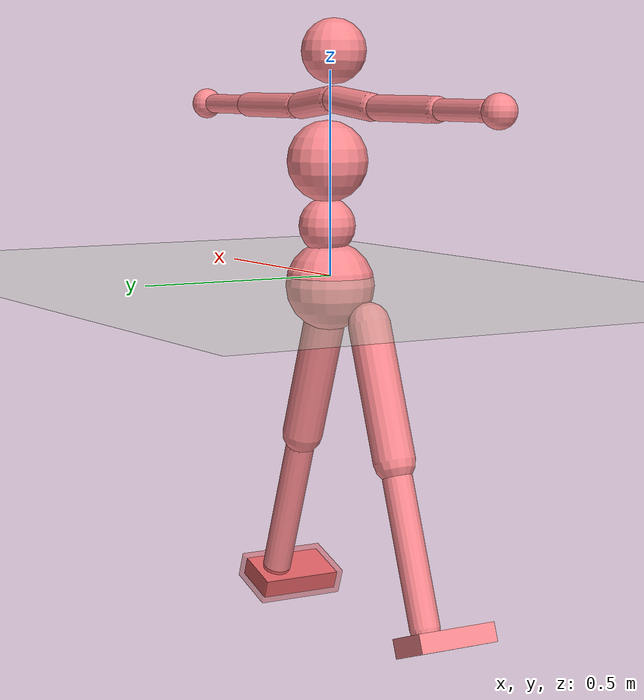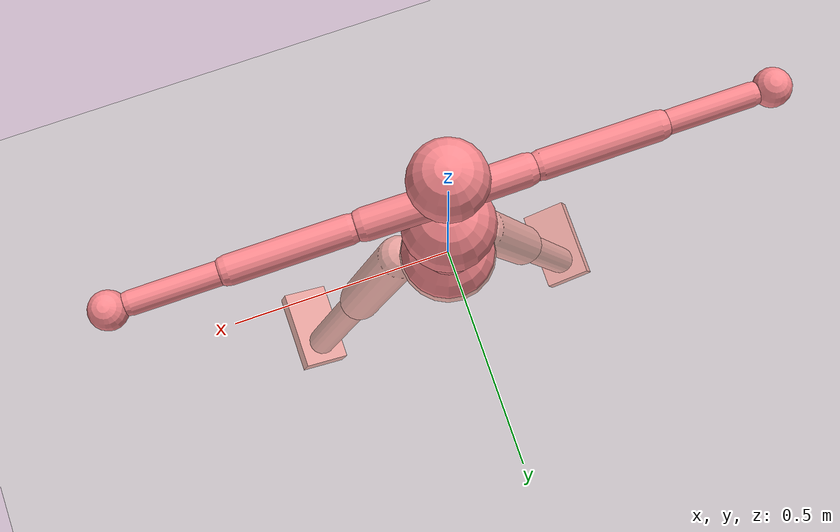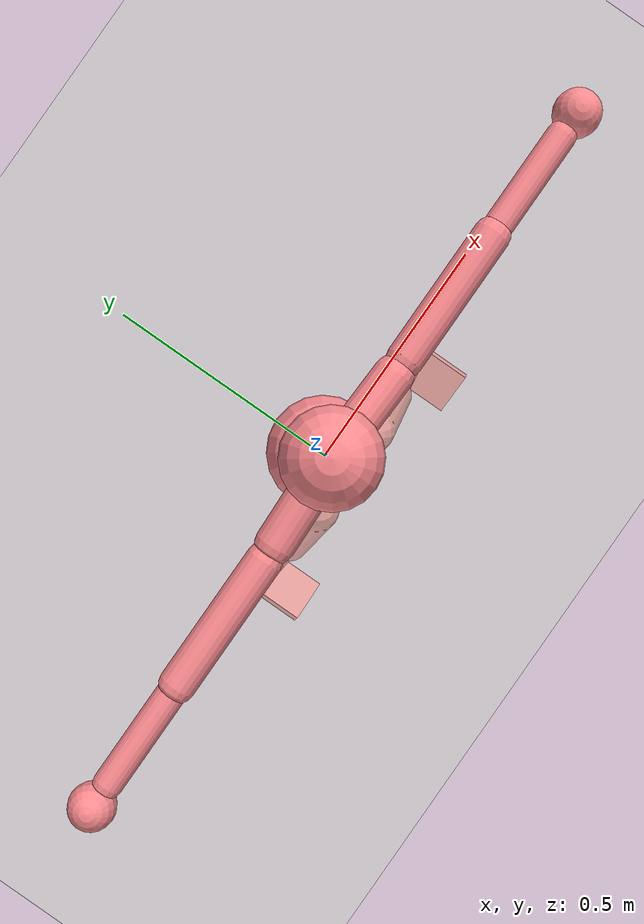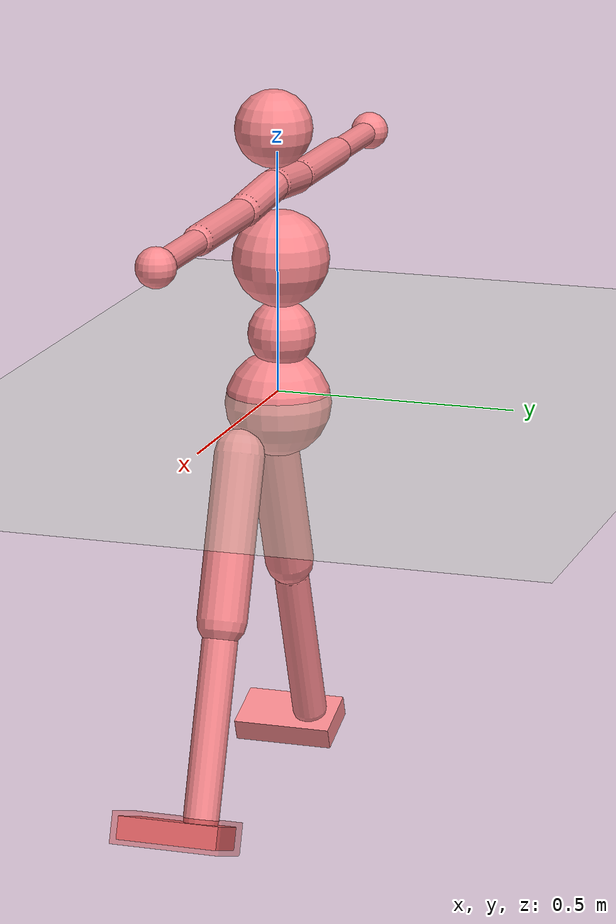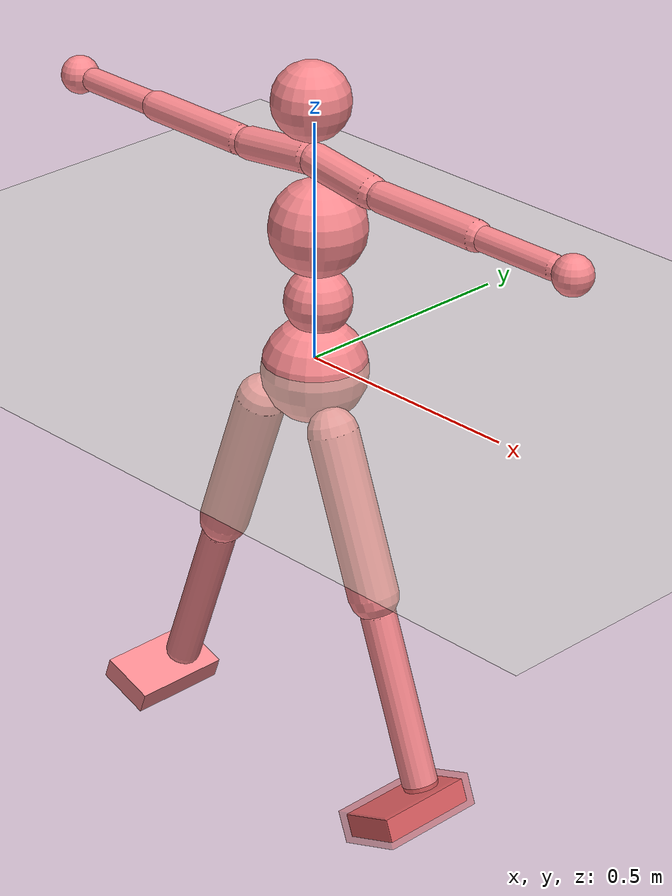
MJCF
<mujoco model="humanoid">
  <compiler angle="degree" inertiafromgeom="true" coordinate="global"/>
  <include file="./common/materials.xml"/>
    <visual>
    <headlight ambient=".4 .4 .4" diffuse=".8 .8 .8" specular="0.3 0.3 0.3"/>
    <map znear=".01"/>
    <quality shadowsize="2048"/>
  </visual>
  <default>
    <joint damping="0.0" armature="0.01" stiffness="0.0" limited="true"/>
    <geom conaffinity="7" condim="1" contype="7" margin="0.001" material="self" rgba=".98 .54 .56 1."/>
  </default>
  <statistic extent="3" center="0 0 1"/>
  <option timestep="0.00222222222"/>
  <asset>
    <texture type="skybox" file="./common/sky1.png" gridsize="3 4" gridlayout=".U..LFRB.D.." width="8192" height="8192"/>
    <texture builtin="flat" height="1278" mark="cross" markrgb="1 1 1" name="texgeom" random="0.01" rgb1=".8 .6 .4" rgb2=".8 .6 .4" type="cube" width="127"/>
  </asset>
  <worldbody>
    <light cutoff="100" diffuse="1 1 1" dir="-0 0 -1.3" directional="true" exponent="1" pos="0 0 1.3" specular=".1 .1 .1"/>
    <geom condim="3" friction="1. .1 .1" material="grid_new" name="floor" pos="0 0 0" rgba=".8 .9 .8 1" size="100 100 .2" type="plane"/>
    <body name="root" user="0.0000 -0.0000 0.0000" pos="0.0000 -0.0000 0.0000">
      <joint armature="0.0" limited="false" name="root" pos="0.0000 -0.0000 0.0000" stiffness="0" type="free"/>
      <geom pos="0.0000 0.0000 -0.0240" size="0.1100" type="sphere"/>
      <body name="lhipjoint" user="0.0963 -0.0494 -0.0918" pos="0.0000 -0.0000 0.0000">
        <body name="lfemur" user="0.2274 -0.0494 -0.4521" pos="0.0963 -0.0494 -0.0918">
          <joint axis="0.0000 -1.0000 0.0000" name="lfemur_z" pos="0.0963 -0.0494 -0.0918" range="-60.0000 70.0000" type="hinge"/>
          <joint axis="-0.3420 -0.0000 0.9397" name="lfemur_y" pos="0.0963 -0.0494 -0.0918" range="-70.0000 70.0000" type="hinge"/>
          <joint axis="0.9397 0.0000 0.3420" name="lfemur_x" pos="0.0963 -0.0494 -0.0918" range="-160.0000 20.0000" type="hinge"/>
          <geom fromto="0.1031 -0.0494 -0.1106 0.2206 -0.0494 -0.4333" size="0.0520" type="capsule"/>
          <body name="ltibia" user="0.3657 -0.0494 -0.8321" pos="0.2274 -0.0494 -0.4521">
            <joint axis="0.9397 0.0000 0.3420" name="knee" stiffness= "5e3" damping = "5e3" pos="0.2274 -0.0494 -0.4521" range="0.0000 170.0000" type="hinge"/>
            <geom contype="1" conaffinity="1" fromto="0.2343 -0.0494 -0.4709 0.3589 -0.0494 -0.8133" size="0.0370" type="capsule"/>
            <body name="lfoot" user="0.3731 -0.1606 -0.8523" pos="0.3657 -0.0494 -0.8321">
              <geom contype="1" conaffinity="1" pos="0.3714 -0.0990 -0.8442" size="0.0600 0.1070 0.0240" quat="0.9848 -0.0000 -0.1736 0.0000" type="box"/>
              <site name="load_force" type="box" pos="0.3714 -0.0990 -0.8442" size="0.0700 0.1170 0.0340" quat="0.9848 -0.0000 -0.1736 0.0000" rgba="0.8 0.2 .2 .4" />
              <site name="load_touch" type="box" pos="0.3714 -0.0990 -0.8442" size="0.0700 0.1170 0.0340" quat="0.9848 -0.0000 -0.1736 0.0000" rgba="0.8 0.2 .2 .4" />
              <joint axis="-0.3420 -0.0000 0.9397" name="lfoot_z" pos="0.3657 -0.0494 -0.8321" stiffness= "1e3" range="-70.0000 20.0000" type="hinge"/>
              <joint axis="0.0000 -1.0000 0.0000" name="lfoot_y" pos="0.3657 -0.0494 -0.8321" stiffness= "1e3" range="-45.0000 45.0000" type="hinge"/>
              <joint axis="0.9397 0.0000 0.3420" name="ankle" pos="0.3657 -0.0494 -0.8321" range="-45.0000 90.0000" type="hinge"/>
            </body>
          </body>
        </body>
      </body>
      <body name="rhipjoint" user="-0.0963 -0.0494 -0.0918" pos="-0.0000 -0.0000 0.0000">
        <body name="rfemur" user="-0.2274 -0.0494 -0.4521" pos="-0.0963 -0.0494 -0.0918">
          <joint axis="0.0000 -1.0000 -0.0000" name="rfemur_z" pos="-0.0963 -0.0494 -0.0918" range="-70.0000 60.0000" type="hinge"/>
          <joint axis="0.3420 -0.0000 0.9397" name="rfemur_y" pos="-0.0963 -0.0494 -0.0918" range="-70.0000 70.0000" type="hinge"/>
          <joint axis="0.9397 0.0000 -0.3420" name="rfemur_x" pos="-0.0963 -0.0494 -0.0918" range="-160.0000 20.0000" type="hinge"/>
          <geom fromto="-0.1031 -0.0494 -0.1106 -0.2206 -0.0494 -0.4333" size="0.0520" type="capsule"/>
          <body name="rtibia" user="-0.3657 -0.0494 -0.8321" pos="-0.2274 -0.0494 -0.4521">
            <joint axis="0.9397 0.0000 -0.3420" name="rtibia_x" pos="-0.2274 -0.0494 -0.4521" range="0.0000 170.0000" type="hinge"/>
            <geom contype="2" conaffinity="2" fromto="-0.2343 -0.0494 -0.4709 -0.3589 -0.0494 -0.8133" size="0.0370" type="capsule"/>
            <body name="rfoot" user="-0.3731 -0.1606 -0.8523" pos="-0.3657 -0.0494 -0.8321">
              <geom contype="2" conaffinity="2" pos="-0.3714 -0.0990 -0.8442" size="0.0600 0.1070 0.0240" quat="0.9848 -0.0000 0.1736 -0.0000" type="box"/>
              <joint axis="0.3420 -0.0000 0.9397" name="rfoot_z" pos="-0.3657 -0.0494 -0.8321" range="-20.0000 70.0000" type="hinge"/>
              <joint axis="0.0000 -1.0000 0.0000" name="rfoot_y" pos="-0.3657 -0.0494 -0.8321" range="-45.0000 45.0000" type="hinge"/>
              <joint axis="0.9397 -0.0000 -0.3420" name="rfoot_x" pos="-0.3657 -0.0494 -0.8321" range="-45.0000 90.0000" type="hinge"/>
            </body>
          </body>
        </body>
      </body>
      <body name="lowerback" user="0.0006 0.0081 0.1132" pos="0.0000 -0.0000 0.0000">
        <body name="upperback" user="0.0011 0.0071 0.2268" pos="0.0006 0.0081 0.1132">
          <geom pos="0.0006 0.0081 0.1232" size="0.0700" type="sphere"/>
          <joint axis="0.0000 -1.0000 0.0000" name="upperback_z" pos="0.0006 0.0081 0.1132" range="-30.0000 30.0000" type="hinge"/>
          <joint axis="0.0000 -0.0000 1.0000" name="upperback_y" pos="0.0006 0.0081 0.1132" range="-30.0000 30.0000" type="hinge"/>
          <joint axis="1.0000 0.0000 0.0000" name="upperback_x" pos="0.0006 0.0081 0.1132" range="-20.0000 45.0000" type="hinge"/>
          <body name="thorax" user="0.0010 0.0024 0.3407" pos="0.0011 0.0071 0.2268">
            <geom pos="0.0011 0.0071 0.2808" size="0.1000" type="sphere"/>
            <body name="lowerneck" user="-0.0023 -0.0083 0.4312" pos="0.0010 0.0024 0.3407">
              <geom pos="-0.0023 -0.0083 0.5472" size="0.0800" type="sphere"/>
              <joint axis="0.0000 -1.0000 0.0000" name="lowerneck_z" pos="0.0010 0.0024 0.3407" range="-30.0000 30.0000" type="hinge"/>
              <joint axis="0.0000 -0.0000 1.0000" name="lowerneck_y" pos="0.0010 0.0024 0.3407" range="-30.0000 30.0000" type="hinge"/>
              <joint axis="1.0000 0.0000 0.0000" name="lowerneck_x" pos="0.0010 0.0024 0.3407" range="-20.0000 45.0000" type="hinge"/>
              <body name="upperneck" user="-0.0013 -0.0038 0.5212" pos="-0.0023 -0.0083 0.4312">
                <body name="head" user="-0.0006 -0.0008 0.6176" pos="-0.0013 -0.0038 0.5212">
                  <camera mode="fixed" xyaxes="-1 0 0 0 0 1"/>
                </body>
              </body>
              <body name="lclavicle" user="0.1790 -0.0149 0.4121" pos="-0.0023 -0.0083 0.4312">
                <geom fromto="0.0101 -0.0088 0.4299 0.1666 -0.0144 0.4134" size="0.0340" type="capsule"/>
                <joint axis="0.0000 -1.0000 0.0000" name="lclavicle_z" pos="0.0010 0.0024 0.3407" range="0.0000 20.0000" type="hinge"/>
                <joint axis="0.0000 -0.0000 1.0000" name="lclavicle_y" pos="0.0010 0.0024 0.3407" range="-20.0000 10.0000" type="hinge"/>
                <body name="lhumerus" user="0.4599 -0.0149 0.4121" pos="0.1790 -0.0149 0.4121">
                  <joint axis="-0.0000 0.8660 -0.5000" name="lhumerus_z" pos="0.1790 -0.0149 0.4121" range="-90.0000 90.0000" type="hinge"/>
                  <joint axis="-1.0000 -0.0000 -0.0000" name="lhumerus_y" pos="0.1790 -0.0149 0.4121" range="-90.0000 90.0000" type="hinge"/>
                  <joint axis="0.0000 -0.5000 -0.8660" name="lhumerus_x" pos="0.1790 -0.0149 0.4121" range="-60.0000 90.0000" type="hinge"/>
                  <geom fromto="0.1965 -0.0149 0.4121 0.4424 -0.0149 0.4121" size="0.0310" type="capsule"/>
                  <body name="lradius" user="0.6374 -0.0149 0.4121" pos="0.4599 -0.0149 0.4121">
                    <geom fromto="0.4599 -0.0149 0.4121 0.6374 -0.0149 0.4121" size="0.0250" type="capsule"/>
                    <joint axis="0.0000 -0.5000 -0.8660" name="lradius_x" pos="0.4599 -0.0149 0.4121" range="-10.0000 170.0000" type="hinge"/>
                    <body name="lwrist" user="0.7261 -0.0149 0.4121" pos="0.6374 -0.0149 0.4121">
                      <geom pos="0.6814 -0.0149 0.4121" size="0.0400" type="sphere"/>
                    </body>
                  </body>
                </body>
              </body>
              <body name="rclavicle" user="-0.1790 -0.0149 0.4121" pos="0.0023 -0.0083 0.4312">
                <geom fromto="-0.0101 -0.0088 0.4299 -0.1666 -0.0144 0.4134" size="0.0340" type="capsule"/>
                <joint axis="0.0000 -1.0000 0.0000" name="rclavicle_z" pos="-0.0010 0.0024 0.3407" range="-20.0000 0.0000" type="hinge"/>
                <joint axis="0.0000 -0.0000 1.0000" name="rclavicle_y" pos="-0.0010 0.0024 0.3407" range="-10.0000 20.0000" type="hinge"/>
                <body name="rhumerus" user="-0.4599 -0.0149 0.4121" pos="-0.1790 -0.0149 0.4121">
                  <joint axis="0.0000 0.8660 -0.5000" name="rhumerus_z" pos="-0.1790 -0.0149 0.4121" range="-90.0000 90.0000" type="hinge"/>
                  <joint axis="1.0000 -0.0000 -0.0000" name="rhumerus_y" pos="-0.1790 -0.0149 0.4121" range="-90.0000 90.0000" type="hinge"/>
                  <joint axis="0.0000 0.5000 0.8660" name="rhumerus_x" pos="-0.1790 -0.0149 0.4121" range="-90.0000 60.0000" type="hinge"/>
                  <geom fromto="-0.1965 -0.0149 0.4121 -0.4424 -0.0149 0.4121" size="0.0310" type="capsule"/>
                  <body name="rradius" user="-0.6374 -0.0149 0.4121" pos="-0.4599 -0.0149 0.4121">
                    <geom fromto="-0.4599 -0.0149 0.4121 -0.6374 -0.0149 0.4121" size="0.0250" type="capsule"/>
                    <joint axis="0.0000 0.5000 0.8660" name="rradius_x" pos="-0.4599 -0.0149 0.4121" range="-10.0000 170.0000" type="hinge"/>
                    <body name="rwrist" user="-0.7261 -0.0149 0.4121" pos="-0.6374 -0.0149 0.4121">
                      <geom pos="-0.6814 -0.0149 0.4121" size="0.0400" type="sphere"/>
                    </body>
                  </body>
                </body>
              </body>
            </body>
          </body>
        </body>
      </body>
    </body>
  </worldbody>
  <sensor>
    <force name="lforce" site="load_force"/>
  </sensor>
  <sensor>
    <touch name="ltouch" site="load_touch"/>
  </sensor>
  <actuator>
    <motor gear="1" joint="lfemur_z" name="lfemur_z"/>
    <motor gear="1" joint="lfemur_y" name="lfemur_y"/>
    <motor gear="1" joint="lfemur_x" name="lfemur_x"/>
    <motor gear="1" joint="knee" name="knee"/>
    <motor gear="1" joint="lfoot_z" name="lfoot_z"/>
    <motor gear="1" joint="lfoot_y" name="lfoot_y"/>
    <motor gear="1" joint="ankle" name="ankle"/>
    <motor gear="1" joint="rfemur_z" name="rfemur_z"/>
    <motor gear="1" joint="rfemur_y" name="rfemur_y"/>
    <motor gear="1" joint="rfemur_x" name="rfemur_x"/>
    <motor gear="1" joint="rtibia_x" name="rtibia_x"/>
    <motor gear="1" joint="rfoot_z" name="rfoot_z"/>
    <motor gear="1" joint="rfoot_y" name="rfoot_y"/>
    <motor gear="1" joint="rfoot_x" name="rfoot_x"/>
    <motor gear="1" joint="upperback_z" name="upperback_z"/>
    <motor gear="1" joint="upperback_y" name="upperback_y"/>
    <motor gear="1" joint="upperback_x" name="upperback_x"/>
    <motor gear="1" joint="lowerneck_z" name="lowerneck_z"/>
    <motor gear="1" joint="lowerneck_y" name="lowerneck_y"/>
    <motor gear="1" joint="lowerneck_x" name="lowerneck_x"/>
    <motor gear="1" joint="lclavicle_z" name="lclavicle_z"/>
    <motor gear="1" joint="lclavicle_y" name="lclavicle_y"/>
    <motor gear="1" joint="lhumerus_z" name="lhumerus_z"/>
    <motor gear="1" joint="lhumerus_y" name="lhumerus_y"/>
    <motor gear="1" joint="lhumerus_x" name="lhumerus_x"/>
    <motor gear="1" joint="lradius_x" name="lradius_x"/>
    <motor gear="1" joint="rclavicle_z" name="rclavicle_z"/>
    <motor gear="1" joint="rclavicle_y" name="rclavicle_y"/>
    <motor gear="1" joint="rhumerus_z" name="rhumerus_z"/>
    <motor gear="1" joint="rhumerus_y" name="rhumerus_y"/>
    <motor gear="1" joint="rhumerus_x" name="rhumerus_x"/>
    <motor gear="1" joint="rradius_x" name="rradius_x"/>
  </actuator>
</mujoco>

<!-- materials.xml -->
<!--
Common textures, colors and materials to be used throughout this suite. Some
materials such as xxx_highlight are activated on occurence of certain events,
for example receiving a positive reward.
-->
<mujoco>
  <asset>
    <texture name="grid" type="2d" builtin="checker" rgb1=".1 .2 .3" rgb2=".2 .3 .4" width="300" height="300" mark="edge" markrgb=".2 .3 .4"/>
    <material name="grid" texture="grid" texrepeat="1 1" texuniform="true" reflectance=".2"/>
    <texture builtin="checker" height="100" name="texplane" rgb1="0 0 0" rgb2=".8 .8 .8" type="2d" width="100"/>
    <texture name="grass" file="./common/grass.png" type="2d"/>

    <texture name="grid_new" type="2d" builtin="checker" rgb1=".1 .3 .2" rgb2=".2 .4 .3" width="1000" height="1000" mark="none" markrgb=".8 .6 .4"/>
    <material name="grid_new" texture="grid_new" texrepeat="0.2 0.2" texuniform="true" reflectance=".2"/>
    <material name="MatPlane" reflectance="0.5" shininess="1" specular="1" texrepeat="60 60" texture="texplane"/>
    <material name="GrassPlane" reflectance="0.0" shininess="1" specular="1" texrepeat="400 400" texture="grass"/>
    <material name="self" rgba=".7 .5 .3 1"/>
    <material name="self_default" rgba=".7 .5 .3 1"/>
    <material name="self_highlight" rgba="0 .5 .3 1"/>
    <material name="effector" rgba=".7 .4 .2 1"/>
    <material name="effector_default" rgba=".7 .4 .2 1"/>
    <material name="effector_highlight" rgba="0 .5 .3 1"/>
    <material name="decoration" rgba=".3 .5 .7 1"/>
    <material name="eye" rgba="0 .2 1 1"/>
    <material name="target" rgba=".6 .3 .3 1"/>
    <material name="target_default" rgba=".6 .3 .3 1"/>
    <material name="target_highlight" rgba=".6 .3 .3 .4"/>
    <material name="expert" rgba=".6 .3 .3 .4"/>
  </asset>
</mujoco>
